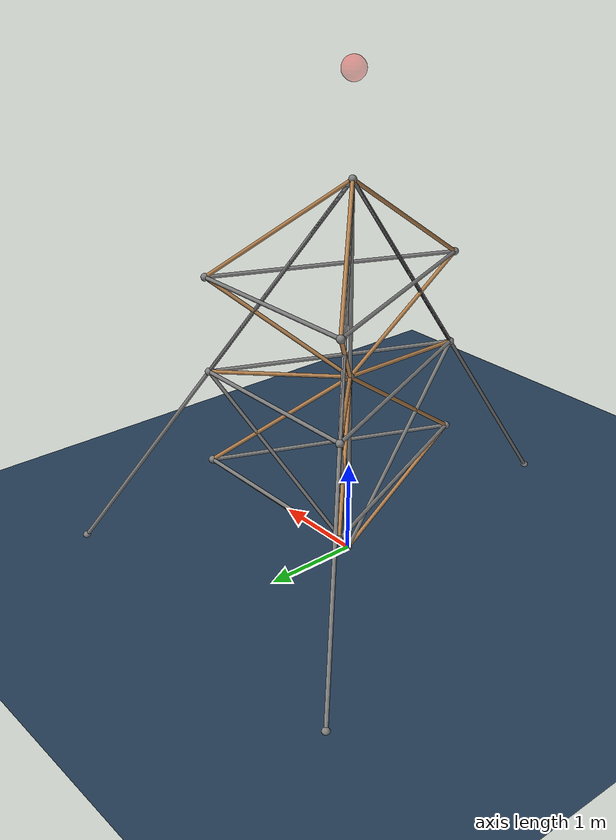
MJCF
<mujoco model="t1d1_3d">
    <include file="./common/visual.xml"/>
    <include file="./common/skybox.xml"/>
    <include file="./common/materials.xml"/>

    <option timestep="0.01" gravity="0 0 0" collision="predefined" viscosity="0.0" integrator="Euler"/>

    <size njmax="200" nconmax="100" nstack="20000"/>

    <visual>
        <rgba haze=".15 .25 .35 1"/>
    </visual>

    <default>
        <joint type="ball" pos="0 0 0" limited="false" damping="0.1"/>
        <motor ctrllimited="false" ctrlrange="-1 1" gear="1"/>
		<tendon stiffness="0" damping="0.2" width="0.02"/>
		<geom size="0.02" mass=".2" material="self"/>
		<site size="0.04"/>
    </default>

    <worldbody>
        <light directional="true" diffuse=".8 .8 .8" specular=".2 .2 .2" pos="0 0 5" dir="0 0 -1"/>

        <body pos="0 0 0">
            <geom name="lbar1" type="capsule" fromto="0 0 0  -1 1 1"/>
			<site name="lb1e" pos="-1 1 1"/>
			<joint name="lj1"/>
            <body name="lbar2" pos="-1 1 1">
                <geom name="lbar2" type="capsule" fromto="0 0 0  1 -1 1"/>
                <joint name="lj2"/>
                <site name="lb2e" pos="1 -1 1"/>
				<body pos="1 -1 1">
					<geom name="lbar3" type="capsule" fromto="0 0 0  -1 1 0"/>
					<joint name="lj3"/>
					<site name="lb3e" pos="-1 1 0"/>
				</body>
                <body pos="1 -1 1">
					<geom name="lbar4" type="capsule" fromto="0 0 0  -1 1 1"/>
					<joint name="lj4"/>
					<site name="lb4e" pos="-1 1 1"/>
                    <body name="lbar5" pos="-1 1 1">
                        <geom name="lbar5" type="capsule" fromto="0 0 0  1 -1 1"/>
                        <joint name="lj5"/>
                        <site name="lb5e" pos="1 -1 1"/>
                    </body>
				</body>
                <body pos="1 -1 1">
					<geom name="mbar3" type="capsule" fromto="0 0 0  0 -1.414 0"/>
					<joint name="mj3"/>
					<site name="mb3e" pos="0 -1.414 0"/>
				</body>
                <body pos="1 -1 1">
					<geom name="rbar3" type="capsule" fromto="0 0 0  1 1 0"/>
					<joint name="rj3"/>
					<site name="rb3e" pos="1 1 0"/>
				</body>
            </body>
        </body>

        <body pos="0 0 0">
            <geom name="mbar1" type="capsule" fromto="0 0 0  0 -1.414 1" />
			<site name="mb1e" pos="0 -1.414 1"/>
			<joint name="mj1"/>
            <body name="mbar2" pos="0 -1.414 1">
                <geom name="mbar2" type="capsule" fromto="0 0 0  0 1.414 1"/>
                <joint name="mj2"/>
                <body pos="0 1.414 1">
					<geom name="mbar4" type="capsule" fromto="0 0 0  0 -1.414 1"/>
					<joint name="mj4"/>
					<site name="mb4e" pos="0 -1.414 1"/>
                    <body name="mbar5" pos="0 -1.414 1">
                        <geom name="mbar5" type="capsule" fromto="0 0 0  0 1.414 1"/>
                        <joint name="mj5"/>
                    </body>
				</body>
            </body>
        </body>

        <body pos="0 0 0">
            <geom name="rbar1" type="capsule" fromto="0 0 0  1 1 1" />
			<site name="rb1e" pos="1 1 1"/>
			<joint name="rj1"/>
            <body name="rbar2" pos="1 1 1">
                <geom name="rbar2" type="capsule" fromto="0 0 0  -1 -1 1"/>
                <joint name="rj2"/>
                <body pos="-1 -1 1">
					<geom name="rbar4" type="capsule" fromto="0 0 0  1 1 1"/>
                    <joint name="rj4"/>
					<site name="rb4e" pos="1 1 1"/>
                    <body name="rbar5" pos="1 1 1">
                        <geom name="rbar5" type="capsule" fromto="0 0 0  -1 -1 1"/>
                        <joint name="rj5"/>
                    </body>
				</body>
            </body>
        </body>

		<body pos="0 0 0">
			<geom name="floor" pos="0 0 0" size="0 0 1" type="plane" material="grid"/>
			<site name="f0" pos="0 0 0"/>
			<site name="fl" pos="-2 2 0"/>
			<site name="fm" pos="0 -2.828 0"/>
            <site name="fr" pos="2 2 0"/>
			<site name="target" pos="0 0 5" size="0.12" rgba="1 0 0 .3"/>
		</body>
    </worldbody>

	<equality>
		<connect active="true" name="c1" body1="lbar2" body2="rbar2" anchor="1 -1 1"/>
        <connect active="true" name="c2" body1="lbar5" body2="rbar5" anchor="1 -1 1"/>
        <connect active="true" name="c3" body1="lbar2" body2="mbar2" anchor="1 -1 1"/>
        <connect active="true" name="c4" body1="lbar5" body2="mbar5" anchor="1 -1 1"/>
	</equality>

    <tendon>
        <spatial name="S1">
            <site site="f0"/>
            <site site="lb2e"/>
        </spatial>
		<spatial name="S2">
            <site site="rb1e"/>
            <site site="lb1e"/>
        </spatial>
        <spatial name="S3">
            <site site="mb1e"/>
            <site site="lb1e"/>
        </spatial>
        <spatial name="S4">
            <site site="mb1e"/>
            <site site="rb1e"/>
        </spatial>
		<spatial name="S5">
            <site site="lb2e"/>
            <site site="lb5e"/>
        </spatial>
		<spatial name="S6">
            <site site="rb4e"/>
            <site site="lb4e"/>
        </spatial>
        <spatial name="S7">
            <site site="mb4e"/>
            <site site="lb4e"/>
        </spatial>
        <spatial name="S8">
            <site site="mb4e"/>
            <site site="rb4e"/>
        </spatial>
        <spatial name="S9">
            <site site="f0"/>
            <site site="lb3e"/>
        </spatial>
        <spatial name="S10">
            <site site="f0"/>
            <site site="rb3e"/>
        </spatial>
        <spatial name="S11">
            <site site="f0"/>
            <site site="mb3e"/>
        </spatial>
        <spatial name="S12">
            <site site="lb5e"/>
            <site site="lb3e"/>
        </spatial>
        <spatial name="S13">
            <site site="lb5e"/>
            <site site="rb3e"/>
        </spatial>
        <spatial name="S14">
            <site site="lb5e"/>
            <site site="mb3e"/>
        </spatial>
        <spatial name="S15">
            <site site="lb3e"/>
            <site site="rb3e"/>
        </spatial>
        <spatial name="S16">
            <site site="lb3e"/>
            <site site="mb3e"/>
        </spatial>
        <spatial name="S17">
            <site site="rb3e"/>
            <site site="mb3e"/>
        </spatial>
        <spatial name="S18">
            <site site="fl"/>
            <site site="lb5e"/>
        </spatial>
        <spatial name="S19">
            <site site="fr"/>
            <site site="lb5e"/>
        </spatial>
        <spatial name="S20">
            <site site="fm"/>
            <site site="lb5e"/>
        </spatial>
    </tendon>

    <actuator>
        <motor tendon="S1"/>
        <motor tendon="S2"/>
		<motor tendon="S3"/>
        <motor tendon="S4"/>
        <motor tendon="S5"/>
        <motor tendon="S6"/>
		<motor tendon="S7"/>
        <motor tendon="S8"/>
        <motor tendon="S9"/>
        <motor tendon="S10"/>
        <motor tendon="S11"/>
        <motor tendon="S12"/>
		<motor tendon="S13"/>
        <motor tendon="S14"/>
        <motor tendon="S15"/>
        <motor tendon="S16"/>
		<motor tendon="S17"/>
        <motor tendon="S18"/>
        <motor tendon="S19"/>
        <motor tendon="S20"/>
    </actuator>

	<sensor>
		<framelinvel objtype="site" objname="lb1e"/>
		<framelinvel objtype="site" objname="lb2e"/>
		<framelinvel objtype="site" objname="lb3e"/>
		<framelinvel objtype="site" objname="lb4e"/>
		<framelinvel objtype="site" objname="lb5e"/>
		<framelinvel objtype="site" objname="mb3e"/>
        <framelinvel objtype="site" objname="rb3e"/>
        <framelinvel objtype="site" objname="mb1e"/>
		<framelinvel objtype="site" objname="mb4e"/>
		<framelinvel objtype="site" objname="rb1e"/>
		<framelinvel objtype="site" objname="rb4e"/>
	</sensor>
</mujoco>

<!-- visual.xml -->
<mujoco>
    <visual>
        <headlight ambient=".4 .4 .4" diffuse=".8 .8 .8" specular="0.1 0.1 0.1" />
        <map znear=".01" />
        <quality shadowsize="2048" />
    </visual>
</mujoco>

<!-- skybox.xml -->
<mujoco>
    <asset>
        <texture name="skybox" type="skybox" builtin="gradient" rgb1=".4 .6 .8" rgb2="0 0 0" width="800" height="800" mark="random" markrgb="1 1 1" />
    </asset>
</mujoco>

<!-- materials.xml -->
<!--
Common textures, colors and materials to be used throughout this suite. Some
materials such as xxx_highlight are activated on occurence of certain events,
for example receiving a positive reward.
-->
<mujoco>
    <asset>
        <texture name="grid" type="2d" builtin="checker" rgb1=".1 .2 .3" rgb2=".2 .3 .4" width="300" height="300" mark="edge" markrgb=".2 .3 .4" />
        <material name="grid" texture="grid" texrepeat="1 1" texuniform="true" reflectance=".2" />
        <material name="self" rgba=".7 .5 .3 1" />
        <material name="self_default" rgba=".7 .5 .3 1" />
        <material name="self_highlight" rgba="0 .5 .3 1" />
        <material name="effector" rgba=".7 .4 .2 1" />
        <material name="effector_default" rgba=".7 .4 .2 1" />
        <material name="effector_highlight" rgba="0 .5 .3 1" />
        <material name="decoration" rgba=".3 .5 .7 1" />
        <material name="eye" rgba="0 .2 1 1" />
        <material name="target" rgba=".6 .3 .3 1" />
        <material name="target_default" rgba=".6 .3 .3 1" />
        <material name="target_highlight" rgba=".6 .3 .3 .4" />
    </asset>
</mujoco>
